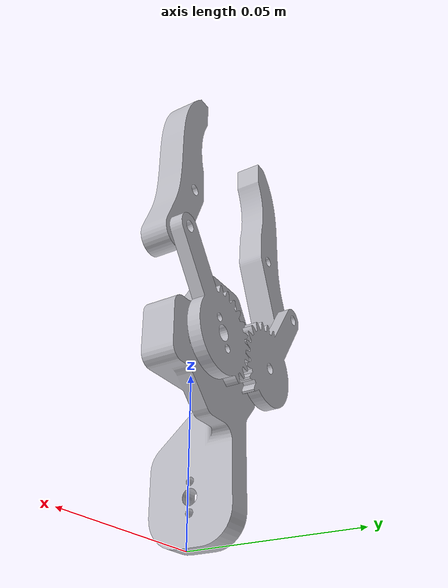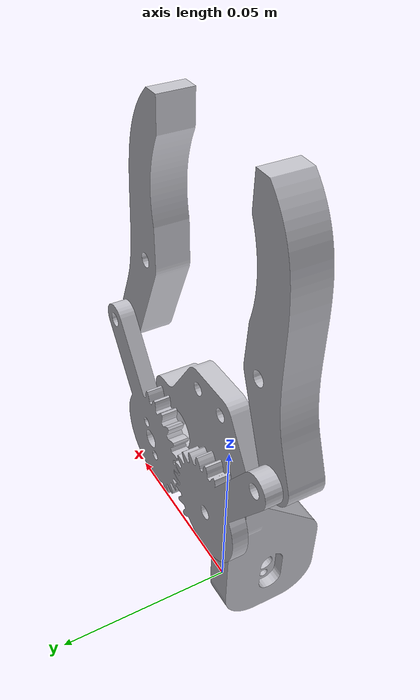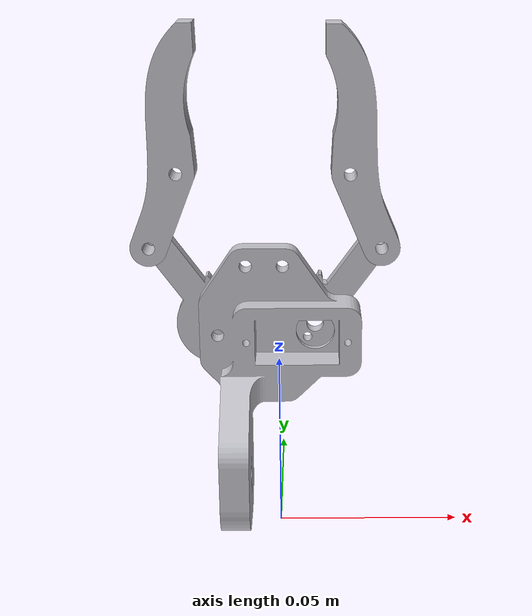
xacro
<?xml version="1.0" ?>
<robot name="Gripper" xmlns:xacro="http://www.ros.org/wiki/xacro">

<xacro:include filename="$(find Gripper_description)/urdf/materials.xacro" />
<xacro:include filename="$(find Gripper_description)/urdf/Gripper.trans" />
<xacro:include filename="$(find Gripper_description)/urdf/Gripper.gazebo" />
<link name="base_link">
  <inertial>
    <origin rpy="0 0 0" xyz="-0.006050416706789768 0.0009195788882098315 0.04061471147490584"/>
    <mass value="0.12341304164534105"/>
    <inertia ixx="5.7e-05" ixy="-3e-06" ixz="-1.1e-05" iyy="6.4e-05" iyz="-1.1e-05" izz="2e-05"/>
  </inertial>
  <visual>
    <origin rpy="0 0 0" xyz="0 0 0"/>
    <geometry>
      <mesh filename="package://Gripper_description/meshes/base_link.stl" scale="0.001 0.001 0.001"/>
    </geometry>
    <material name="silver"/>
  </visual>
  <collision>
    <origin rpy="0 0 0" xyz="0 0 0"/>
    <geometry>
      <mesh filename="package://Gripper_description/meshes/base_link.stl" scale="0.001 0.001 0.001"/>
    </geometry>
  </collision>
</link>

<link name="gear2_1">
  <inertial>
    <origin rpy="0 0 0" xyz="0.024818908246964602 0.0018968125691227588 -0.07509669409261616"/>
    <mass value="0.020141998404349198"/>
    <inertia ixx="2e-06" ixy="0.0" ixz="-1e-06" iyy="4e-06" iyz="0.0" izz="1e-06"/>
  </inertial>
  <visual>
    <origin rpy="0 0 0" xyz="0.012154 -0.013206 -0.135127"/>
    <geometry>
      <mesh filename="package://Gripper_description/meshes/gear2_1.stl" scale="0.001 0.001 0.001"/>
    </geometry>
    <material name="silver"/>
  </visual>
  <collision>
    <origin rpy="0 0 0" xyz="0.012154 -0.013206 -0.135127"/>
    <geometry>
      <mesh filename="package://Gripper_description/meshes/gear2_1.stl" scale="0.001 0.001 0.001"/>
    </geometry>
  </collision>
</link>

<link name="gear1_1">
  <inertial>
    <origin rpy="0 0 0" xyz="0.01928311018664428 0.0018968125691227588 -0.07516893176542272"/>
    <mass value="0.020736664284343446"/>
    <inertia ixx="2e-06" ixy="0.0" ixz="1e-06" iyy="4e-06" iyz="0.0" izz="1e-06"/>
  </inertial>
  <visual>
    <origin rpy="0 0 0" xyz="0.039054 -0.013206 -0.135127"/>
    <geometry>
      <mesh filename="package://Gripper_description/meshes/gear1_1.stl" scale="0.001 0.001 0.001"/>
    </geometry>
    <material name="silver"/>
  </visual>
  <collision>
    <origin rpy="0 0 0" xyz="0.039054 -0.013206 -0.135127"/>
    <geometry>
      <mesh filename="package://Gripper_description/meshes/gear1_1.stl" scale="0.001 0.001 0.001"/>
    </geometry>
  </collision>
</link>

<link name="Gripper_1_2">
  <inertial>
    <origin rpy="0 0 0" xyz="0.03875886297454109 -0.01785318743087723 0.11834129231621449"/>
    <mass value="0.04236978910676513"/>
    <inertia ixx="1.3e-05" ixy="-0.0" ixz="-2e-06" iyy="1.3e-05" iyz="-0.0" izz="1e-06"/>
  </inertial>
  <visual>
    <origin rpy="0 0 0" xyz="0.067958 -0.026206 0.01155"/>
    <geometry>
      <mesh filename="package://Gripper_description/meshes/Gripper_1_2.stl" scale="0.001 0.001 0.001"/>
    </geometry>
    <material name="silver"/>
  </visual>
  <collision>
    <origin rpy="0 0 0" xyz="0.067958 -0.026206 0.01155"/>
    <geometry>
      <mesh filename="package://Gripper_description/meshes/Gripper_1_2.stl" scale="0.001 0.001 0.001"/>
    </geometry>
  </collision>
</link>

<link name="Gripper_1_1">
  <inertial>
    <origin rpy="0 0 0" xyz="-0.041596465602601884 -0.017853187430877247 0.12250428742216049"/>
    <mass value="0.04236978910676513"/>
    <inertia ixx="1.3e-05" ixy="-0.0" ixz="2e-06" iyy="1.3e-05" iyz="-0.0" izz="1e-06"/>
  </inertial>
  <visual>
    <origin rpy="0 0 0" xyz="-0.062946 -0.026206 0.01587"/>
    <geometry>
      <mesh filename="package://Gripper_description/meshes/Gripper_1_1.stl" scale="0.001 0.001 0.001"/>
    </geometry>
    <material name="silver"/>
  </visual>
  <collision>
    <origin rpy="0 0 0" xyz="-0.062946 -0.026206 0.01587"/>
    <geometry>
      <mesh filename="package://Gripper_description/meshes/Gripper_1_1.stl" scale="0.001 0.001 0.001"/>
    </geometry>
  </collision>
</link>

<joint name="Rev3" type="revolute">
  <origin rpy="0 0 0" xyz="-0.012154 0.013206 0.135127"/>
  <parent link="base_link"/>
  <child link="gear2_1"/>
  <axis xyz="0.0 1.0 0.0"/>
  <limit effort="100" lower="-0.523599" upper="0.523599" velocity="100"/>
</joint>

<joint name="Rev4" type="revolute">
  <origin rpy="0 0 0" xyz="-0.039054 0.013206 0.135127"/>
  <parent link="base_link"/>
  <child link="gear1_1"/>
  <axis xyz="0.0 1.0 0.0"/>
  <limit effort="100" lower="-0.523599" upper="0.523599" velocity="100"/>
</joint>

<joint name="Rev6" type="revolute">
  <origin rpy="0 0 0" xyz="-0.028904 0.013 -0.146677"/>
  <parent link="gear1_1"/>
  <child link="Gripper_1_2"/>
  <axis xyz="0.0 -1.0 0.0"/>
  <limit effort="100" lower="-0.523599" upper="0.523599" velocity="100"/>
</joint>

<joint name="Rev7" type="revolute">
  <origin rpy="0 0 0" xyz="0.0751 0.013 -0.150997"/>
  <parent link="gear2_1"/>
  <child link="Gripper_1_1"/>
  <axis xyz="-0.0 1.0 -0.0"/>
  <limit effort="100" lower="-0.523599" upper="0.523599" velocity="100"/>
</joint>

</robot>

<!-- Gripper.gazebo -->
<robot name="Gripper" xmlns:xacro="http://www.ros.org/wiki/xacro" >

<xacro:property name="body_color" value="Gazebo/Silver" />

<gazebo>
  <plugin filename="libgazebo_ros_control.so" name="control"/>
</gazebo>
<gazebo reference="base_link">
  <material>${body_color}</material>
  <mu1>0.2</mu1>
  <mu2>0.2</mu2>
  <selfCollide>true</selfCollide>
  <gravity>true</gravity>
</gazebo>

<gazebo reference="gear2_1">
  <material>${body_color}</material>
  <mu1>0.2</mu1>
  <mu2>0.2</mu2>
  <selfCollide>true</selfCollide>
</gazebo>

<gazebo reference="gear1_1">
  <material>${body_color}</material>
  <mu1>0.2</mu1>
  <mu2>0.2</mu2>
  <selfCollide>true</selfCollide>
</gazebo>

<gazebo reference="Gripper_1_2">
  <material>${body_color}</material>
  <mu1>0.2</mu1>
  <mu2>0.2</mu2>
  <selfCollide>true</selfCollide>
</gazebo>

<gazebo reference="Gripper_1_1">
  <material>${body_color}</material>
  <mu1>0.2</mu1>
  <mu2>0.2</mu2>
  <selfCollide>true</selfCollide>
</gazebo>

</robot>
